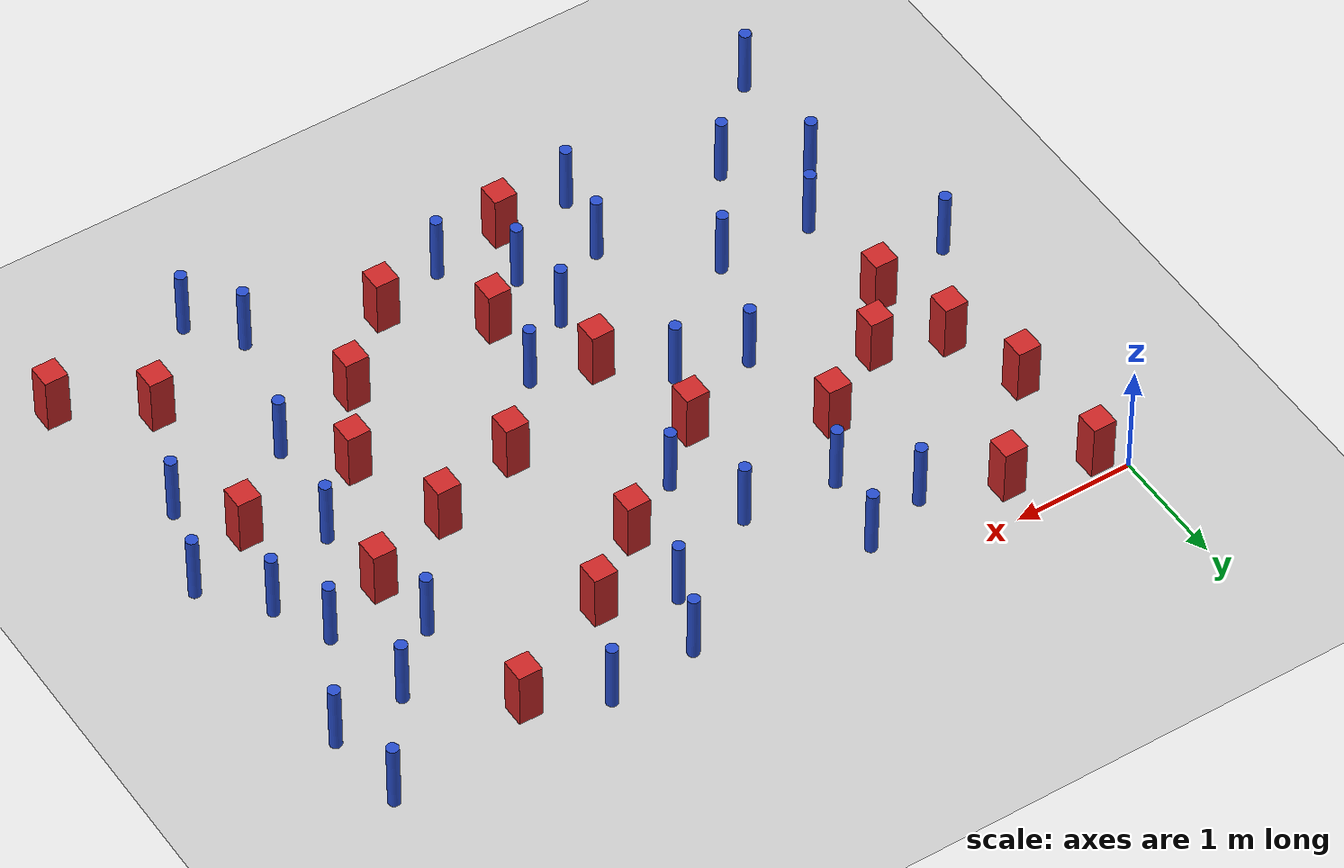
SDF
<sdf version="1.6">
 <world name="default">
  <model name="ground_plane">
   <static>1</static>
   <link name="link">
    <collision name="collision">
     <geometry><plane><normal>0 0 1</normal><size>100 100</size></plane></geometry>
     <surface><friction><ode><mu>100</mu><mu2>50</mu2></ode></friction></surface>
    </collision>
    <visual name="visual">
     <cast_shadows>0</cast_shadows>
     <geometry><plane><normal>0 0 1</normal><size>100 100</size></plane></geometry>
     <material>
      <ambient>1.0 1.0 1.0 1.0</ambient>
      <diffuse>0.8 0.8 0.8 1.0</diffuse>
      <specular>0.01 0.01 0.01 1.000000</specular>
     </material>
    </visual>
   </link>
  </model>
  <model name="pole_obstacle0">
   <static>true</static>
   <pose>1.79713980787 -2.40707328271 -9.47619616065e-06 5.49618799737e-07 2.36310414062e-07 -1.55090534798e-07</pose>
   <link name="link">
    <pose>0 0 0.3 0 -0 0</pose>
    <inertial>
     <mass>1</mass>
     <inertia><ixx>0.145833</ixx><ixy>0</ixy><ixz>0</ixz><iyy>0.145833</iyy><iyz>0</iyz><izz>0.125</izz></inertia>
    </inertial>
    <collision name="collision">
     <geometry><cylinder><radius>0.05</radius><length>.6</length></cylinder></geometry>
    </collision>
    <visual name="visual">
     <geometry><cylinder><radius>0.05</radius><length>.6</length></cylinder></geometry>
     <material>
      <script><name>Gazebo/Blue</name><uri>file://media/materials/scripts/gazebo.material</uri></script>
     </material>
    </visual>
   </link>
  </model>
  <model name="square_post_obstacle5">
   <static>true</static>
   <pose>0.197511593898 -0.157477024642 -6.11067671241e-07 -5.50515727128e-06 -8.79689657224e-07 2.37013304536e-05</pose>
   <link name="link">
    <pose>0 0 0.25 0 -0 0</pose>
    <inertial>
     <mass>100</mass>
     <inertia>
      <ixx>0.166667</ixx>
      <ixy>0</ixy>
      <ixz>0</ixz>
      <iyy>0.166667</iyy>
      <iyz>0</iyz>
      <izz>0.166667</izz>
     </inertia>
    </inertial>
    <collision name="collision"><geometry><box><size>.2 .2 .5</size></box></geometry></collision>
    <visual name="visual">
     <geometry><box><size>.2 .2 .5</size></box></geometry>
     <material>
      <script><name>Gazebo/Red</name><uri>file://media/materials/scripts/gazebo.material</uri></script>
     </material>
    </visual>
   </link>
  </model>
  <model name="pole_obstacle4">
   <static>true</static>
   <pose>6.36612746297 -0.911602490669 -9.47619616065e-06 5.49618799737e-07 2.36310414061e-07 -1.550905348e-07</pose>
   <link name="link">
    <pose>0 0 0.3 0 -0 0</pose>
    <inertial>
     <mass>1</mass>
     <inertia><ixx>0.145833</ixx><ixy>0</ixy><ixz>0</ixz><iyy>0.145833</iyy><iyz>0</iyz><izz>0.125</izz></inertia>
    </inertial>
    <collision name="collision">
     <geometry><cylinder><radius>0.05</radius><length>.6</length></cylinder></geometry>
    </collision>
    <visual name="visual">
     <geometry><cylinder><radius>0.05</radius><length>.6</length></cylinder></geometry>
     <material>
      <script><name>Gazebo/Blue</name><uri>file://media/materials/scripts/gazebo.material</uri></script>
     </material>
    </visual>
   </link>
  </model>
  <model name="square_post_obstacle9">
   <static>true</static>
   <pose>0.98204102087 -1.93543841282 -6.11067671241e-07 -5.50515727128e-06 -8.79689657224e-07 2.37013304536e-05</pose>
   <link name="link">
    <pose>0 0 0.25 0 -0 0</pose>
    <inertial>
     <mass>100</mass>
     <inertia>
      <ixx>0.166667</ixx>
      <ixy>0</ixy>
      <ixz>0</ixz>
      <iyy>0.166667</iyy>
      <iyz>0</iyz>
      <izz>0.166667</izz>
     </inertia>
    </inertial>
    <collision name="collision"><geometry><box><size>.2 .2 .5</size></box></geometry></collision>
    <visual name="visual">
     <geometry><box><size>.2 .2 .5</size></box></geometry>
     <material>
      <script><name>Gazebo/Red</name><uri>file://media/materials/scripts/gazebo.material</uri></script>
     </material>
    </visual>
   </link>
  </model>
  <model name="square_post_obstacle13">
   <static>true</static>
   <pose>4.09865665631 -0.925299943334 -6.11067671241e-07 -5.50515727128e-06 -8.79689657224e-07 2.37013304536e-05</pose>
   <link name="link">
    <pose>0 0 0.25 0 -0 0</pose>
    <inertial>
     <mass>100</mass>
     <inertia>
      <ixx>0.166667</ixx>
      <ixy>0</ixy>
      <ixz>0</ixz>
      <iyy>0.166667</iyy>
      <iyz>0</iyz>
      <izz>0.166667</izz>
     </inertia>
    </inertial>
    <collision name="collision"><geometry><box><size>.2 .2 .5</size></box></geometry></collision>
    <visual name="visual">
     <geometry><box><size>.2 .2 .5</size></box></geometry>
     <material>
      <script><name>Gazebo/Red</name><uri>file://media/materials/scripts/gazebo.material</uri></script>
     </material>
    </visual>
   </link>
  </model>
  <model name="square_post_obstacle17">
   <static>true</static>
   <pose>6.47951026331 -4.78304410986 -6.11067671241e-07 -5.50515727128e-06 -8.79689657224e-07 2.37013304536e-05</pose>
   <link name="link">
    <pose>0 0 0.25 0 -0 0</pose>
    <inertial>
     <mass>100</mass>
     <inertia>
      <ixx>0.166667</ixx>
      <ixy>0</ixy>
      <ixz>0</ixz>
      <iyy>0.166667</iyy>
      <iyz>0</iyz>
      <izz>0.166667</izz>
     </inertia>
    </inertial>
    <collision name="collision"><geometry><box><size>.2 .2 .5</size></box></geometry></collision>
    <visual name="visual">
     <geometry><box><size>.2 .2 .5</size></box></geometry>
     <material>
      <script><name>Gazebo/Red</name><uri>file://media/materials/scripts/gazebo.material</uri></script>
     </material>
    </visual>
   </link>
  </model>
  <model name="square_post_obstacle18">
   <static>true</static>
   <pose>0.617176443368 -2.41358064817 -6.11067671241e-07 -5.50515727128e-06 -8.79689657224e-07 2.37013304536e-05</pose>
   <link name="link">
    <pose>0 0 0.25 0 -0 0</pose>
    <inertial>
     <mass>100</mass>
     <inertia>
      <ixx>0.166667</ixx>
      <ixy>0</ixy>
      <ixz>0</ixz>
      <iyy>0.166667</iyy>
      <iyz>0</iyz>
      <izz>0.166667</izz>
     </inertia>
    </inertial>
    <collision name="collision"><geometry><box><size>.2 .2 .5</size></box></geometry></collision>
    <visual name="visual">
     <geometry><box><size>.2 .2 .5</size></box></geometry>
     <material>
      <script><name>Gazebo/Red</name><uri>file://media/materials/scripts/gazebo.material</uri></script>
     </material>
    </visual>
   </link>
  </model>
  <model name="pole_obstacle23">
   <static>true</static>
   <pose>1.43627492624 -3.33051828095 -9.47619616065e-06 5.49618799737e-07 2.36310414062e-07 -1.55090534798e-07</pose>
   <link name="link">
    <pose>0 0 0.3 0 -0 0</pose>
    <inertial>
     <mass>1</mass>
     <inertia><ixx>0.145833</ixx><ixy>0</ixy><ixz>0</ixz><iyy>0.145833</iyy><iyz>0</iyz><izz>0.125</izz></inertia>
    </inertial>
    <collision name="collision">
     <geometry><cylinder><radius>0.05</radius><length>.6</length></cylinder></geometry>
    </collision>
    <visual name="visual">
     <geometry><cylinder><radius>0.05</radius><length>.6</length></cylinder></geometry>
     <material>
      <script><name>Gazebo/Blue</name><uri>file://media/materials/scripts/gazebo.material</uri></script>
     </material>
    </visual>
   </link>
  </model>
  <model name="pole_obstacle36">
   <static>true</static>
   <pose>5.88306310807 -1.77314694247 -9.47619616065e-06 5.49618799738e-07 2.36310414071e-07 -1.55090534796e-07</pose>
   <link name="link">
    <pose>0 0 0.3 0 -0 0</pose>
    <inertial>
     <mass>1</mass>
     <inertia><ixx>0.145833</ixx><ixy>0</ixy><ixz>0</ixz><iyy>0.145833</iyy><iyz>0</iyz><izz>0.125</izz></inertia>
    </inertial>
    <collision name="collision">
     <geometry><cylinder><radius>0.05</radius><length>.6</length></cylinder></geometry>
    </collision>
    <visual name="visual">
     <geometry><cylinder><radius>0.05</radius><length>.6</length></cylinder></geometry>
     <material>
      <script><name>Gazebo/Blue</name><uri>file://media/materials/scripts/gazebo.material</uri></script>
     </material>
    </visual>
   </link>
  </model>
  <model name="square_post_obstacle45">
   <static>true</static>
   <pose>4.88205253295 -3.0809164761 -6.11067671241e-07 -5.50515727128e-06 -8.79689657224e-07 2.37013304536e-05</pose>
   <link name="link">
    <pose>0 0 0.25 0 -0 0</pose>
    <inertial>
     <mass>100</mass>
     <inertia>
      <ixx>0.166667</ixx>
      <ixy>0</ixy>
      <ixz>0</ixz>
      <iyy>0.166667</iyy>
      <iyz>0</iyz>
      <izz>0.166667</izz>
     </inertia>
    </inertial>
    <collision name="collision"><geometry><box><size>.2 .2 .5</size></box></geometry></collision>
    <visual name="visual">
     <geometry><box><size>.2 .2 .5</size></box></geometry>
     <material>
      <script><name>Gazebo/Red</name><uri>file://media/materials/scripts/gazebo.material</uri></script>
     </material>
    </visual>
   </link>
  </model>
  <model name="square_post_obstacle48">
   <static>true</static>
   <pose>5.33449981564 -1.98627649027 -6.11067671241e-07 -5.50515727128e-06 -8.79689657224e-07 2.37013304536e-05</pose>
   <link name="link">
    <pose>0 0 0.25 0 -0 0</pose>
    <inertial>
     <mass>100</mass>
     <inertia>
      <ixx>0.166667</ixx>
      <ixy>0</ixy>
      <ixz>0</ixz>
      <iyy>0.166667</iyy>
      <iyz>0</iyz>
      <izz>0.166667</izz>
     </inertia>
    </inertial>
    <collision name="collision"><geometry><box><size>.2 .2 .5</size></box></geometry></collision>
    <visual name="visual">
     <geometry><box><size>.2 .2 .5</size></box></geometry>
     <material>
      <script><name>Gazebo/Red</name><uri>file://media/materials/scripts/gazebo.material</uri></script>
     </material>
    </visual>
   </link>
  </model>
  <model name="pole_obstacle46">
   <static>true</static>
   <pose>4.47923872898 -0.157603476245 -9.47619616065e-06 5.49618799737e-07 2.36310414076e-07 -1.55090534792e-07</pose>
   <link name="link">
    <pose>0 0 0.3 0 -0 0</pose>
    <inertial>
     <mass>1</mass>
     <inertia><ixx>0.145833</ixx><ixy>0</ixy><ixz>0</ixz><iyy>0.145833</iyy><iyz>0</iyz><izz>0.125</izz></inertia>
    </inertial>
    <collision name="collision">
     <geometry><cylinder><radius>0.05</radius><length>.6</length></cylinder></geometry>
    </collision>
    <visual name="visual">
     <geometry><cylinder><radius>0.05</radius><length>.6</length></cylinder></geometry>
     <material>
      <script><name>Gazebo/Blue</name><uri>file://media/materials/scripts/gazebo.material</uri></script>
     </material>
    </visual>
   </link>
  </model>
  <model name="pole_obstacle50">
   <static>true</static>
   <pose>0.641150790295 -3.32454295059 -9.47619616065e-06 5.49618799737e-07 2.36310414066e-07 -1.55090534797e-07</pose>
   <link name="link">
    <pose>0 0 0.3 0 -0 0</pose>
    <inertial>
     <mass>1</mass>
     <inertia><ixx>0.145833</ixx><ixy>0</ixy><ixz>0</ixz><iyy>0.145833</iyy><iyz>0</iyz><izz>0.125</izz></inertia>
    </inertial>
    <collision name="collision">
     <geometry><cylinder><radius>0.05</radius><length>.6</length></cylinder></geometry>
    </collision>
    <visual name="visual">
     <geometry><cylinder><radius>0.05</radius><length>.6</length></cylinder></geometry>
     <material>
      <script><name>Gazebo/Blue</name><uri>file://media/materials/scripts/gazebo.material</uri></script>
     </material>
    </visual>
   </link>
  </model>
  <model name="pole_obstacle54">
   <static>true</static>
   <pose>3.29684404966 -3.12797003068 -9.47619616065e-06 5.49618799737e-07 2.36310414051e-07 -1.55090534807e-07</pose>
   <link name="link">
    <pose>0 0 0.3 0 -0 0</pose>
    <inertial>
     <mass>1</mass>
     <inertia><ixx>0.145833</ixx><ixy>0</ixy><ixz>0</ixz><iyy>0.145833</iyy><iyz>0</iyz><izz>0.125</izz></inertia>
    </inertial>
    <collision name="collision">
     <geometry><cylinder><radius>0.05</radius><length>.6</length></cylinder></geometry>
    </collision>
    <visual name="visual">
     <geometry><cylinder><radius>0.05</radius><length>.6</length></cylinder></geometry>
     <material>
      <script><name>Gazebo/Blue</name><uri>file://media/materials/scripts/gazebo.material</uri></script>
     </material>
    </visual>
   </link>
  </model>
  <model name="square_post_obstacle74">
   <static>true</static>
   <pose>4.6040077005 -2.26789190237 -6.11067671241e-07 -5.50515727128e-06 -8.79689657224e-07 2.37013304536e-05</pose>
   <link name="link">
    <pose>0 0 0.25 0 -0 0</pose>
    <inertial>
     <mass>100</mass>
     <inertia>
      <ixx>0.166667</ixx>
      <ixy>0</ixy>
      <ixz>0</ixz>
      <iyy>0.166667</iyy>
      <iyz>0</iyz>
      <izz>0.166667</izz>
     </inertia>
    </inertial>
    <collision name="collision"><geometry><box><size>.2 .2 .5</size></box></geometry></collision>
    <visual name="visual">
     <geometry><box><size>.2 .2 .5</size></box></geometry>
     <material>
      <script><name>Gazebo/Red</name><uri>file://media/materials/scripts/gazebo.material</uri></script>
     </material>
    </visual>
   </link>
  </model>
  <model name="pole_obstacle72">
   <static>true</static>
   <pose>6.48706411269 -2.69681543487 -9.47619616065e-06 5.49618799738e-07 2.36310414051e-07 -1.55090534805e-07</pose>
   <link name="link">
    <pose>0 0 0.3 0 -0 0</pose>
    <inertial>
     <mass>1</mass>
     <inertia><ixx>0.145833</ixx><ixy>0</ixy><ixz>0</ixz><iyy>0.145833</iyy><iyz>0</iyz><izz>0.125</izz></inertia>
    </inertial>
    <collision name="collision">
     <geometry><cylinder><radius>0.05</radius><length>.6</length></cylinder></geometry>
    </collision>
    <visual name="visual">
     <geometry><cylinder><radius>0.05</radius><length>.6</length></cylinder></geometry>
     <material>
      <script><name>Gazebo/Blue</name><uri>file://media/materials/scripts/gazebo.material</uri></script>
     </material>
    </visual>
   </link>
  </model>
  <model name="pole_obstacle77">
   <static>true</static>
   <pose>5.24574032715 -1.46074808996 -9.47619616065e-06 5.49618799738e-07 2.36310414071e-07 -1.55090534796e-07</pose>
   <link name="link">
    <pose>0 0 0.3 0 -0 0</pose>
    <inertial>
     <mass>1</mass>
     <inertia><ixx>0.145833</ixx><ixy>0</ixy><ixz>0</ixz><iyy>0.145833</iyy><iyz>0</iyz><izz>0.125</izz></inertia>
    </inertial>
    <collision name="collision">
     <geometry><cylinder><radius>0.05</radius><length>.6</length></cylinder></geometry>
    </collision>
    <visual name="visual">
     <geometry><cylinder><radius>0.05</radius><length>.6</length></cylinder></geometry>
     <material>
      <script><name>Gazebo/Blue</name><uri>file://media/materials/scripts/gazebo.material</uri></script>
     </material>
    </visual>
   </link>
  </model>
  <model name="square_post_obstacle77">
   <static>true</static>
   <pose>5.05801454032 -0.439441729416 -6.11067671241e-07 -5.50515727128e-06 -8.79689657224e-07 2.37013304536e-05</pose>
   <link name="link">
    <pose>0 0 0.25 0 -0 0</pose>
    <inertial>
     <mass>100</mass>
     <inertia>
      <ixx>0.166667</ixx>
      <ixy>0</ixy>
      <ixz>0</ixz>
      <iyy>0.166667</iyy>
      <iyz>0</iyz>
      <izz>0.166667</izz>
     </inertia>
    </inertial>
    <collision name="collision"><geometry><box><size>.2 .2 .5</size></box></geometry></collision>
    <visual name="visual">
     <geometry><box><size>.2 .2 .5</size></box></geometry>
     <material>
      <script><name>Gazebo/Red</name><uri>file://media/materials/scripts/gazebo.material</uri></script>
     </material>
    </visual>
   </link>
  </model>
  <model name="pole_obstacle80">
   <static>true</static>
   <pose>5.24190397127 -3.5339137137 -9.47619616065e-06 5.49618799738e-07 2.36310414051e-07 -1.55090534805e-07</pose>
   <link name="link">
    <pose>0 0 0.3 0 -0 0</pose>
    <inertial>
     <mass>1</mass>
     <inertia><ixx>0.145833</ixx><ixy>0</ixy><ixz>0</ixz><iyy>0.145833</iyy><iyz>0</iyz><izz>0.125</izz></inertia>
    </inertial>
    <collision name="collision">
     <geometry><cylinder><radius>0.05</radius><length>.6</length></cylinder></geometry>
    </collision>
    <visual name="visual">
     <geometry><cylinder><radius>0.05</radius><length>.6</length></cylinder></geometry>
     <material>
      <script><name>Gazebo/Blue</name><uri>file://media/materials/scripts/gazebo.material</uri></script>
     </material>
    </visual>
   </link>
  </model>
  <model name="pole_obstacle85">
   <static>true</static>
   <pose>2.70877573835 -1.10115838359 -9.47619616065e-06 5.49618799737e-07 2.36310414072e-07 -1.55090534793e-07</pose>
   <link name="link">
    <pose>0 0 0.3 0 -0 0</pose>
    <inertial>
     <mass>1</mass>
     <inertia><ixx>0.145833</ixx><ixy>0</ixy><ixz>0</ixz><iyy>0.145833</iyy><iyz>0</iyz><izz>0.125</izz></inertia>
    </inertial>
    <collision name="collision">
     <geometry><cylinder><radius>0.05</radius><length>.6</length></cylinder></geometry>
    </collision>
    <visual name="visual">
     <geometry><cylinder><radius>0.05</radius><length>.6</length></cylinder></geometry>
     <material>
      <script><name>Gazebo/Blue</name><uri>file://media/materials/scripts/gazebo.material</uri></script>
     </material>
    </visual>
   </link>
  </model>
  <model name="pole_obstacle88">
   <static>true</static>
   <pose>6.22171479248 -3.44707941952 -9.47619616065e-06 5.49618799738e-07 2.36310414051e-07 -1.55090534805e-07</pose>
   <link name="link">
    <pose>0 0 0.3 0 -0 0</pose>
    <inertial>
     <mass>1</mass>
     <inertia><ixx>0.145833</ixx><ixy>0</ixy><ixz>0</ixz><iyy>0.145833</iyy><iyz>0</iyz><izz>0.125</izz></inertia>
    </inertial>
    <collision name="collision">
     <geometry><cylinder><radius>0.05</radius><length>.6</length></cylinder></geometry>
    </collision>
    <visual name="visual">
     <geometry><cylinder><radius>0.05</radius><length>.6</length></cylinder></geometry>
     <material>
      <script><name>Gazebo/Blue</name><uri>file://media/materials/scripts/gazebo.material</uri></script>
     </material>
    </visual>
   </link>
  </model>
  <model name="pole_obstacle91">
   <static>true</static>
   <pose>2.15530482796 -3.97657933415 -9.47619616065e-06 5.49618799737e-07 2.36310414046e-07 -1.5509053481e-07</pose>
   <link name="link">
    <pose>0 0 0.3 0 -0 0</pose>
    <inertial>
     <mass>1</mass>
     <inertia><ixx>0.145833</ixx><ixy>0</ixy><ixz>0</ixz><iyy>0.145833</iyy><iyz>0</iyz><izz>0.125</izz></inertia>
    </inertial>
    <collision name="collision">
     <geometry><cylinder><radius>0.05</radius><length>.6</length></cylinder></geometry>
    </collision>
    <visual name="visual">
     <geometry><cylinder><radius>0.05</radius><length>.6</length></cylinder></geometry>
     <material>
      <script><name>Gazebo/Blue</name><uri>file://media/materials/scripts/gazebo.material</uri></script>
     </material>
    </visual>
   </link>
  </model>
  <model name="pole_obstacle96">
   <static>true</static>
   <pose>4.89634450425 -4.62459549455 -9.47619616065e-06 5.49618799737e-07 2.36310414037e-07 -1.55090534814e-07</pose>
   <link name="link">
    <pose>0 0 0.3 0 -0 0</pose>
    <inertial>
     <mass>1</mass>
     <inertia><ixx>0.145833</ixx><ixy>0</ixy><ixz>0</ixz><iyy>0.145833</iyy><iyz>0</iyz><izz>0.125</izz></inertia>
    </inertial>
    <collision name="collision">
     <geometry><cylinder><radius>0.05</radius><length>.6</length></cylinder></geometry>
    </collision>
    <visual name="visual">
     <geometry><cylinder><radius>0.05</radius><length>.6</length></cylinder></geometry>
     <material>
      <script><name>Gazebo/Blue</name><uri>file://media/materials/scripts/gazebo.material</uri></script>
     </material>
    </visual>
   </link>
  </model>
  <model name="pole_obstacle98">
   <static>true</static>
   <pose>0.898442365877 -4.15790424621 -9.47619616065e-06 5.49618799737e-07 2.36310414065e-07 -1.55090534796e-07</pose>
   <link name="link">
    <pose>0 0 0.3 0 -0 0</pose>
    <inertial>
     <mass>1</mass>
     <inertia><ixx>0.145833</ixx><ixy>0</ixy><ixz>0</ixz><iyy>0.145833</iyy><iyz>0</iyz><izz>0.125</izz></inertia>
    </inertial>
    <collision name="collision">
     <geometry><cylinder><radius>0.05</radius><length>.6</length></cylinder></geometry>
    </collision>
    <visual name="visual">
     <geometry><cylinder><radius>0.05</radius><length>.6</length></cylinder></geometry>
     <material>
      <script><name>Gazebo/Blue</name><uri>file://media/materials/scripts/gazebo.material</uri></script>
     </material>
    </visual>
   </link>
  </model>
  <model name="pole_obstacle99">
   <static>true</static>
   <pose>2.06062932571 -4.5558936154 -9.47619616065e-06 5.49618799738e-07 2.3631041406e-07 -1.55090534801e-07</pose>
   <link name="link">
    <pose>0 0 0.3 0 -0 0</pose>
    <inertial>
     <mass>1</mass>
     <inertia><ixx>0.145833</ixx><ixy>0</ixy><ixz>0</ixz><iyy>0.145833</iyy><iyz>0</iyz><izz>0.125</izz></inertia>
    </inertial>
    <collision name="collision">
     <geometry><cylinder><radius>0.05</radius><length>.6</length></cylinder></geometry>
    </collision>
    <visual name="visual">
     <geometry><cylinder><radius>0.05</radius><length>.6</length></cylinder></geometry>
     <material>
      <script><name>Gazebo/Blue</name><uri>file://media/materials/scripts/gazebo.material</uri></script>
     </material>
    </visual>
   </link>
  </model>
  <model name="pole_obstacle104">
   <static>true</static>
   <pose>1.51119523708 -0.555002443955 -9.47619616065e-06 5.49618799737e-07 2.36310414065e-07 -1.55090534798e-07</pose>
   <link name="link">
    <pose>0 0 0.3 0 -0 0</pose>
    <inertial>
     <mass>1</mass>
     <inertia><ixx>0.145833</ixx><ixy>0</ixy><ixz>0</ixz><iyy>0.145833</iyy><iyz>0</iyz><izz>0.125</izz></inertia>
    </inertial>
    <collision name="collision">
     <geometry><cylinder><radius>0.05</radius><length>.6</length></cylinder></geometry>
    </collision>
    <visual name="visual">
     <geometry><cylinder><radius>0.05</radius><length>.6</length></cylinder></geometry>
     <material>
      <script><name>Gazebo/Blue</name><uri>file://media/materials/scripts/gazebo.material</uri></script>
     </material>
    </visual>
   </link>
  </model>
  <model name="pole_obstacle106">
   <static>true</static>
   <pose>2.76606650168 -3.52347537513 -9.47619616065e-06 5.49618799737e-07 2.36310414051e-07 -1.55090534807e-07</pose>
   <link name="link">
    <pose>0 0 0.3 0 -0 0</pose>
    <inertial>
     <mass>1</mass>
     <inertia><ixx>0.145833</ixx><ixy>0</ixy><ixz>0</ixz><iyy>0.145833</iyy><iyz>0</iyz><izz>0.125</izz></inertia>
    </inertial>
    <collision name="collision">
     <geometry><cylinder><radius>0.05</radius><length>.6</length></cylinder></geometry>
    </collision>
    <visual name="visual">
     <geometry><cylinder><radius>0.05</radius><length>.6</length></cylinder></geometry>
     <material>
      <script><name>Gazebo/Blue</name><uri>file://media/materials/scripts/gazebo.material</uri></script>
     </material>
    </visual>
   </link>
  </model>
  <model name="square_post_obstacle94">
   <static>true</static>
   <pose>3.88974843109 -4.28744657972 -6.11067671241e-07 -5.50515727128e-06 -8.79689657224e-07 2.37013304536e-05</pose>
   <link name="link">
    <pose>0 0 0.25 0 -0 0</pose>
    <inertial>
     <mass>100</mass>
     <inertia>
      <ixx>0.166667</ixx>
      <ixy>0</ixy>
      <ixz>0</ixz>
      <iyy>0.166667</iyy>
      <iyz>0</iyz>
      <izz>0.166667</izz>
     </inertia>
    </inertial>
    <collision name="collision"><geometry><box><size>.2 .2 .5</size></box></geometry></collision>
    <visual name="visual">
     <geometry><box><size>.2 .2 .5</size></box></geometry>
     <material>
      <script><name>Gazebo/Red</name><uri>file://media/materials/scripts/gazebo.material</uri></script>
     </material>
    </visual>
   </link>
  </model>
  <model name="pole_obstacle116">
   <static>true</static>
   <pose>5.39169970492 -2.62491331652 -9.47619616065e-06 5.49618799738e-07 2.36310414051e-07 -1.55090534805e-07</pose>
   <link name="link">
    <pose>0 0 0.3 0 -0 0</pose>
    <inertial>
     <mass>1</mass>
     <inertia><ixx>0.145833</ixx><ixy>0</ixy><ixz>0</ixz><iyy>0.145833</iyy><iyz>0</iyz><izz>0.125</izz></inertia>
    </inertial>
    <collision name="collision">
     <geometry><cylinder><radius>0.05</radius><length>.6</length></cylinder></geometry>
    </collision>
    <visual name="visual">
     <geometry><cylinder><radius>0.05</radius><length>.6</length></cylinder></geometry>
     <material>
      <script><name>Gazebo/Blue</name><uri>file://media/materials/scripts/gazebo.material</uri></script>
     </material>
    </visual>
   </link>
  </model>
  <model name="square_post_obstacle103">
   <static>true</static>
   <pose>2.81457620785 -2.95507759897 -6.11067671241e-07 -5.50515727128e-06 -8.79689657224e-07 2.37013304536e-05</pose>
   <link name="link">
    <pose>0 0 0.25 0 -0 0</pose>
    <inertial>
     <mass>100</mass>
     <inertia>
      <ixx>0.166667</ixx>
      <ixy>0</ixy>
      <ixz>0</ixz>
      <iyy>0.166667</iyy>
      <iyz>0</iyz>
      <izz>0.166667</izz>
     </inertia>
    </inertial>
    <collision name="collision"><geometry><box><size>.2 .2 .5</size></box></geometry></collision>
    <visual name="visual">
     <geometry><box><size>.2 .2 .5</size></box></geometry>
     <material>
      <script><name>Gazebo/Red</name><uri>file://media/materials/scripts/gazebo.material</uri></script>
     </material>
    </visual>
   </link>
  </model>
  <model name="pole_obstacle125">
   <static>true</static>
   <pose>0.215349523909 -4.85945469957 -9.47619616065e-06 5.49618799737e-07 2.36310414069e-07 -1.55090534795e-07</pose>
   <link name="link">
    <pose>0 0 0.3 0 -0 0</pose>
    <inertial>
     <mass>1</mass>
     <inertia><ixx>0.145833</ixx><ixy>0</ixy><ixz>0</ixz><iyy>0.145833</iyy><iyz>0</iyz><izz>0.125</izz></inertia>
    </inertial>
    <collision name="collision">
     <geometry><cylinder><radius>0.05</radius><length>.6</length></cylinder></geometry>
    </collision>
    <visual name="visual">
     <geometry><cylinder><radius>0.05</radius><length>.6</length></cylinder></geometry>
     <material>
      <script><name>Gazebo/Blue</name><uri>file://media/materials/scripts/gazebo.material</uri></script>
     </material>
    </visual>
   </link>
  </model>
  <model name="square_post_obstacle122">
   <static>true</static>
   <pose>5.8319648845 -4.34421431524 -6.11067671241e-07 -5.50515727128e-06 -8.79689657224e-07 2.37013304536e-05</pose>
   <link name="link">
    <pose>0 0 0.25 0 -0 0</pose>
    <inertial>
     <mass>100</mass>
     <inertia>
      <ixx>0.166667</ixx>
      <ixy>0</ixy>
      <ixz>0</ixz>
      <iyy>0.166667</iyy>
      <iyz>0</iyz>
      <izz>0.166667</izz>
     </inertia>
    </inertial>
    <collision name="collision"><geometry><box><size>.2 .2 .5</size></box></geometry></collision>
    <visual name="visual">
     <geometry><box><size>.2 .2 .5</size></box></geometry>
     <material>
      <script><name>Gazebo/Red</name><uri>file://media/materials/scripts/gazebo.material</uri></script>
     </material>
    </visual>
   </link>
  </model>
  <model name="pole_obstacle140">
   <static>true</static>
   <pose>5.73751817475 -1.0118169395 -9.47619616065e-06 5.49618799737e-07 2.36310414067e-07 -1.55090534797e-07</pose>
   <link name="link">
    <pose>0 0 0.3 0 -0 0</pose>
    <inertial>
     <mass>1</mass>
     <inertia><ixx>0.145833</ixx><ixy>0</ixy><ixz>0</ixz><iyy>0.145833</iyy><iyz>0</iyz><izz>0.125</izz></inertia>
    </inertial>
    <collision name="collision">
     <geometry><cylinder><radius>0.05</radius><length>.6</length></cylinder></geometry>
    </collision>
    <visual name="visual">
     <geometry><cylinder><radius>0.05</radius><length>.6</length></cylinder></geometry>
     <material>
      <script><name>Gazebo/Blue</name><uri>file://media/materials/scripts/gazebo.material</uri></script>
     </material>
    </visual>
   </link>
  </model>
  <model name="pole_obstacle142">
   <static>true</static>
   <pose>1.93397819432 -1.0368788472 -9.47619616065e-06 5.49618799738e-07 2.36310414064e-07 -1.55090534797e-07</pose>
   <link name="link">
    <pose>0 0 0.3 0 -0 0</pose>
    <inertial>
     <mass>1</mass>
     <inertia><ixx>0.145833</ixx><ixy>0</ixy><ixz>0</ixz><iyy>0.145833</iyy><iyz>0</iyz><izz>0.125</izz></inertia>
    </inertial>
    <collision name="collision">
     <geometry><cylinder><radius>0.05</radius><length>.6</length></cylinder></geometry>
    </collision>
    <visual name="visual">
     <geometry><cylinder><radius>0.05</radius><length>.6</length></cylinder></geometry>
     <material>
      <script><name>Gazebo/Blue</name><uri>file://media/materials/scripts/gazebo.material</uri></script>
     </material>
    </visual>
   </link>
  </model>
  <model name="square_post_obstacle132">
   <static>true</static>
   <pose>4.50292379999 -3.72191377514 -6.11067671241e-07 -5.50515727128e-06 -8.79689657224e-07 2.37013304536e-05</pose>
   <link name="link">
    <pose>0 0 0.25 0 -0 0</pose>
    <inertial>
     <mass>100</mass>
     <inertia>
      <ixx>0.166667</ixx>
      <ixy>0</ixy>
      <ixz>0</ixz>
      <iyy>0.166667</iyy>
      <iyz>0</iyz>
      <izz>0.166667</izz>
     </inertia>
    </inertial>
    <collision name="collision"><geometry><box><size>.2 .2 .5</size></box></geometry></collision>
    <visual name="visual">
     <geometry><box><size>.2 .2 .5</size></box></geometry>
     <material>
      <script><name>Gazebo/Red</name><uri>file://media/materials/scripts/gazebo.material</uri></script>
     </material>
    </visual>
   </link>
  </model>
  <model name="square_post_obstacle135">
   <static>true</static>
   <pose>2.66982766037 -4.54702124688 -6.11067671241e-07 -5.50515727128e-06 -8.79689657224e-07 2.37013304536e-05</pose>
   <link name="link">
    <pose>0 0 0.25 0 -0 0</pose>
    <inertial>
     <mass>100</mass>
     <inertia>
      <ixx>0.166667</ixx>
      <ixy>0</ixy>
      <ixz>0</ixz>
      <iyy>0.166667</iyy>
      <iyz>0</iyz>
      <izz>0.166667</izz>
     </inertia>
    </inertial>
    <collision name="collision"><geometry><box><size>.2 .2 .5</size></box></geometry></collision>
    <visual name="visual">
     <geometry><box><size>.2 .2 .5</size></box></geometry>
     <material>
      <script><name>Gazebo/Red</name><uri>file://media/materials/scripts/gazebo.material</uri></script>
     </material>
    </visual>
   </link>
  </model>
  <model name="square_post_obstacle136">
   <static>true</static>
   <pose>3.85469856775 -2.51298568318 -6.11067671241e-07 -5.50515727128e-06 -8.79689657224e-07 2.37013304536e-05</pose>
   <link name="link">
    <pose>0 0 0.25 0 -0 0</pose>
    <inertial>
     <mass>100</mass>
     <inertia>
      <ixx>0.166667</ixx>
      <ixy>0</ixy>
      <ixz>0</ixz>
      <iyy>0.166667</iyy>
      <iyz>0</iyz>
      <izz>0.166667</izz>
     </inertia>
    </inertial>
    <collision name="collision"><geometry><box><size>.2 .2 .5</size></box></geometry></collision>
    <visual name="visual">
     <geometry><box><size>.2 .2 .5</size></box></geometry>
     <material>
      <script><name>Gazebo/Red</name><uri>file://media/materials/scripts/gazebo.material</uri></script>
     </material>
    </visual>
   </link>
  </model>
  <model name="pole_obstacle147">
   <static>true</static>
   <pose>-0.0945649054652 -2.57667070736 -9.47619616065e-06 5.49618799737e-07 2.36310414067e-07 -1.55090534797e-07</pose>
   <link name="link">
    <pose>0 0 0.3 0 -0 0</pose>
    <inertial>
     <mass>1</mass>
     <inertia><ixx>0.145833</ixx><ixy>0</ixy><ixz>0</ixz><iyy>0.145833</iyy><iyz>0</iyz><izz>0.125</izz></inertia>
    </inertial>
    <collision name="collision">
     <geometry><cylinder><radius>0.05</radius><length>.6</length></cylinder></geometry>
    </collision>
    <visual name="visual">
     <geometry><cylinder><radius>0.05</radius><length>.6</length></cylinder></geometry>
     <material>
      <script><name>Gazebo/Blue</name><uri>file://media/materials/scripts/gazebo.material</uri></script>
     </material>
    </visual>
   </link>
  </model>
  <model name="pole_obstacle150">
   <static>true</static>
   <pose>2.36044016011 -2.56759113357 -9.47619616065e-06 5.49618799737e-07 2.36310414051e-07 -1.55090534807e-07</pose>
   <link name="link">
    <pose>0 0 0.3 0 -0 0</pose>
    <inertial>
     <mass>1</mass>
     <inertia><ixx>0.145833</ixx><ixy>0</ixy><ixz>0</ixz><iyy>0.145833</iyy><iyz>0</iyz><izz>0.125</izz></inertia>
    </inertial>
    <collision name="collision">
     <geometry><cylinder><radius>0.05</radius><length>.6</length></cylinder></geometry>
    </collision>
    <visual name="visual">
     <geometry><cylinder><radius>0.05</radius><length>.6</length></cylinder></geometry>
     <material>
      <script><name>Gazebo/Blue</name><uri>file://media/materials/scripts/gazebo.material</uri></script>
     </material>
    </visual>
   </link>
  </model>
  <model name="pole_obstacle153">
   <static>true</static>
   <pose>3.28778344729 -4.46049307043 -9.47619616065e-06 5.49618799738e-07 2.3631041406e-07 -1.55090534801e-07</pose>
   <link name="link">
    <pose>0 0 0.3 0 -0 0</pose>
    <inertial>
     <mass>1</mass>
     <inertia><ixx>0.145833</ixx><ixy>0</ixy><ixz>0</ixz><iyy>0.145833</iyy><iyz>0</iyz><izz>0.125</izz></inertia>
    </inertial>
    <collision name="collision">
     <geometry><cylinder><radius>0.05</radius><length>.6</length></cylinder></geometry>
    </collision>
    <visual name="visual">
     <geometry><cylinder><radius>0.05</radius><length>.6</length></cylinder></geometry>
     <material>
      <script><name>Gazebo/Blue</name><uri>file://media/materials/scripts/gazebo.material</uri></script>
     </material>
    </visual>
   </link>
  </model>
  <model name="pole_obstacle155">
   <static>true</static>
   <pose>6.2974240131 -0.222873281521 -9.47619616065e-06 5.49618799737e-07 2.36310414066e-07 -1.55090534799e-07</pose>
   <link name="link">
    <pose>0 0 0.3 0 -0 0</pose>
    <inertial>
     <mass>1</mass>
     <inertia><ixx>0.145833</ixx><ixy>0</ixy><ixz>0</ixz><iyy>0.145833</iyy><iyz>0</iyz><izz>0.125</izz></inertia>
    </inertial>
    <collision name="collision">
     <geometry><cylinder><radius>0.05</radius><length>.6</length></cylinder></geometry>
    </collision>
    <visual name="visual">
     <geometry><cylinder><radius>0.05</radius><length>.6</length></cylinder></geometry>
     <material>
      <script><name>Gazebo/Blue</name><uri>file://media/materials/scripts/gazebo.material</uri></script>
     </material>
    </visual>
   </link>
  </model>
  <model name="pole_obstacle156">
   <static>true</static>
   <pose>2.06837377127 -0.369327251772 -9.47619616065e-06 5.49618799738e-07 2.36310414074e-07 -1.55090534794e-07</pose>
   <link name="link">
    <pose>0 0 0.3 0 -0 0</pose>
    <inertial>
     <mass>1</mass>
     <inertia><ixx>0.145833</ixx><ixy>0</ixy><ixz>0</ixz><iyy>0.145833</iyy><iyz>0</iyz><izz>0.125</izz></inertia>
    </inertial>
    <collision name="collision">
     <geometry><cylinder><radius>0.05</radius><length>.6</length></cylinder></geometry>
    </collision>
    <visual name="visual">
     <geometry><cylinder><radius>0.05</radius><length>.6</length></cylinder></geometry>
     <material>
      <script><name>Gazebo/Blue</name><uri>file://media/materials/scripts/gazebo.material</uri></script>
     </material>
    </visual>
   </link>
  </model>
  <model name="square_post_obstacle156">
   <static>true</static>
   <pose>0.891820733294 -0.30798291495 -6.11067671241e-07 -5.50515727128e-06 -8.79689657224e-07 2.37013304536e-05</pose>
   <link name="link">
    <pose>0 0 0.25 0 -0 0</pose>
    <inertial>
     <mass>100</mass>
     <inertia>
      <ixx>0.166667</ixx>
      <ixy>0</ixy>
      <ixz>0</ixz>
      <iyy>0.166667</iyy>
      <iyz>0</iyz>
      <izz>0.166667</izz>
     </inertia>
    </inertial>
    <collision name="collision"><geometry><box><size>.2 .2 .5</size></box></geometry></collision>
    <visual name="visual">
     <geometry><box><size>.2 .2 .5</size></box></geometry>
     <material>
      <script><name>Gazebo/Red</name><uri>file://media/materials/scripts/gazebo.material</uri></script>
     </material>
    </visual>
   </link>
  </model>
  <model name="square_post_obstacle162">
   <static>true</static>
   <pose>3.51949906086 -1.37626428516 -6.11067671241e-07 -5.50515727128e-06 -8.79689657224e-07 2.37013304536e-05</pose>
   <link name="link">
    <pose>0 0 0.25 0 -0 0</pose>
    <inertial>
     <mass>100</mass>
     <inertia>
      <ixx>0.166667</ixx>
      <ixy>0</ixy>
      <ixz>0</ixz>
      <iyy>0.166667</iyy>
      <iyz>0</iyz>
      <izz>0.166667</izz>
     </inertia>
    </inertial>
    <collision name="collision"><geometry><box><size>.2 .2 .5</size></box></geometry></collision>
    <visual name="visual">
     <geometry><box><size>.2 .2 .5</size></box></geometry>
     <material>
      <script><name>Gazebo/Red</name><uri>file://media/materials/scripts/gazebo.material</uri></script>
     </material>
    </visual>
   </link>
  </model>
  <model name="pole_obstacle176">
   <static>true</static>
   <pose>2.81729441657 -4.06564523131 -9.47619616065e-06 5.49618799738e-07 2.3631041406e-07 -1.55090534801e-07</pose>
   <link name="link">
    <pose>0 0 0.3 0 -0 0</pose>
    <inertial>
     <mass>1</mass>
     <inertia><ixx>0.145833</ixx><ixy>0</ixy><ixz>0</ixz><iyy>0.145833</iyy><iyz>0</iyz><izz>0.125</izz></inertia>
    </inertial>
    <collision name="collision">
     <geometry><cylinder><radius>0.05</radius><length>.6</length></cylinder></geometry>
    </collision>
    <visual name="visual">
     <geometry><cylinder><radius>0.05</radius><length>.6</length></cylinder></geometry>
     <material>
      <script><name>Gazebo/Blue</name><uri>file://media/materials/scripts/gazebo.material</uri></script>
     </material>
    </visual>
   </link>
  </model>
  <model name="square_post_obstacle183">
   <static>true</static>
   <pose>0.432349443631 -1.75303218025 -6.11067671241e-07 -5.50515727128e-06 -8.79689657224e-07 2.37013304536e-05</pose>
   <link name="link">
    <pose>0 0 0.25 0 -0 0</pose>
    <inertial>
     <mass>100</mass>
     <inertia>
      <ixx>0.166667</ixx>
      <ixy>0</ixy>
      <ixz>0</ixz>
      <iyy>0.166667</iyy>
      <iyz>0</iyz>
      <izz>0.166667</izz>
     </inertia>
    </inertial>
    <collision name="collision"><geometry><box><size>.2 .2 .5</size></box></geometry></collision>
    <visual name="visual">
     <geometry><box><size>.2 .2 .5</size></box></geometry>
     <material>
      <script><name>Gazebo/Red</name><uri>file://media/materials/scripts/gazebo.material</uri></script>
     </material>
    </visual>
   </link>
  </model>
  <model name="square_post_obstacle185">
   <static>true</static>
   <pose>0.223169473697 -1.08904528593 -6.11067671241e-07 -5.50515727128e-06 -8.79689657224e-07 2.37013304536e-05</pose>
   <link name="link">
    <pose>0 0 0.25 0 -0 0</pose>
    <inertial>
     <mass>100</mass>
     <inertia>
      <ixx>0.166667</ixx>
      <ixy>0</ixy>
      <ixz>0</ixz>
      <iyy>0.166667</iyy>
      <iyz>0</iyz>
      <izz>0.166667</izz>
     </inertia>
    </inertial>
    <collision name="collision"><geometry><box><size>.2 .2 .5</size></box></geometry></collision>
    <visual name="visual">
     <geometry><box><size>.2 .2 .5</size></box></geometry>
     <material>
      <script><name>Gazebo/Red</name><uri>file://media/materials/scripts/gazebo.material</uri></script>
     </material>
    </visual>
   </link>
  </model>
  <model name="pole_obstacle192">
   <static>true</static>
   <pose>3.72669885658 -0.231743201817 -9.4761961606e-06 5.49618799729e-07 2.36310414002e-07 -1.55090534824e-07</pose>
   <link name="link">
    <pose>0 0 0.3 0 -0 0</pose>
    <inertial>
     <mass>1</mass>
     <inertia><ixx>0.145833</ixx><ixy>0</ixy><ixz>0</ixz><iyy>0.145833</iyy><iyz>0</iyz><izz>0.125</izz></inertia>
    </inertial>
    <collision name="collision">
     <geometry><cylinder><radius>0.05</radius><length>.6</length></cylinder></geometry>
    </collision>
    <visual name="visual">
     <geometry><cylinder><radius>0.05</radius><length>.6</length></cylinder></geometry>
     <material>
      <script><name>Gazebo/Blue</name><uri>file://media/materials/scripts/gazebo.material</uri></script>
     </material>
    </visual>
   </link>
  </model>
  <model name="pole_obstacle199">
   <static>true</static>
   <pose>0.317848802867 -3.79206041691 -9.47619616065e-06 5.49618799738e-07 2.36310414065e-07 -1.55090534798e-07</pose>
   <link name="link">
    <pose>0 0 0.3 0 -0 0</pose>
    <inertial>
     <mass>1</mass>
     <inertia><ixx>0.145833</ixx><ixy>0</ixy><ixz>0</ixz><iyy>0.145833</iyy><iyz>0</iyz><izz>0.125</izz></inertia>
    </inertial>
    <collision name="collision">
     <geometry><cylinder><radius>0.05</radius><length>.6</length></cylinder></geometry>
    </collision>
    <visual name="visual">
     <geometry><cylinder><radius>0.05</radius><length>.6</length></cylinder></geometry>
     <material>
      <script><name>Gazebo/Blue</name><uri>file://media/materials/scripts/gazebo.material</uri></script>
     </material>
    </visual>
   </link>
  </model>
  <model name="pole_obstacle207">
   <static>true</static>
   <pose>3.53910238892 -0.719364338422 -9.47619616065e-06 5.49618799738e-07 2.36310414075e-07 -1.55090534793e-07</pose>
   <link name="link">
    <pose>0 0 0.3 0 -0 0</pose>
    <inertial>
     <mass>1</mass>
     <inertia><ixx>0.145833</ixx><ixy>0</ixy><ixz>0</ixz><iyy>0.145833</iyy><iyz>0</iyz><izz>0.125</izz></inertia>
    </inertial>
    <collision name="collision">
     <geometry><cylinder><radius>0.05</radius><length>.6</length></cylinder></geometry>
    </collision>
    <visual name="visual">
     <geometry><cylinder><radius>0.05</radius><length>.6</length></cylinder></geometry>
     <material>
      <script><name>Gazebo/Blue</name><uri>file://media/materials/scripts/gazebo.material</uri></script>
     </material>
    </visual>
   </link>
  </model>
  <model name="pole_obstacle208">
   <static>true</static>
   <pose>6.09488421413 -2.22979626023 -9.47619616065e-06 5.49618799738e-07 2.36310414051e-07 -1.55090534805e-07</pose>
   <link name="link">
    <pose>0 0 0.3 0 -0 0</pose>
    <inertial>
     <mass>1</mass>
     <inertia><ixx>0.145833</ixx><ixy>0</ixy><ixz>0</ixz><iyy>0.145833</iyy><iyz>0</iyz><izz>0.125</izz></inertia>
    </inertial>
    <collision name="collision">
     <geometry><cylinder><radius>0.05</radius><length>.6</length></cylinder></geometry>
    </collision>
    <visual name="visual">
     <geometry><cylinder><radius>0.05</radius><length>.6</length></cylinder></geometry>
     <material>
      <script><name>Gazebo/Blue</name><uri>file://media/materials/scripts/gazebo.material</uri></script>
     </material>
    </visual>
   </link>
  </model>
  <model name="pole_obstacle216">
   <static>true</static>
   <pose>5.2022655453 -5.02211434326 -9.47619616065e-06 5.49618799737e-07 2.36310414037e-07 -1.55090534814e-07</pose>
   <link name="link">
    <pose>0 0 0.3 0 -0 0</pose>
    <inertial>
     <mass>1</mass>
     <inertia><ixx>0.145833</ixx><ixy>0</ixy><ixz>0</ixz><iyy>0.145833</iyy><iyz>0</iyz><izz>0.125</izz></inertia>
    </inertial>
    <collision name="collision">
     <geometry><cylinder><radius>0.05</radius><length>.6</length></cylinder></geometry>
    </collision>
    <visual name="visual">
     <geometry><cylinder><radius>0.05</radius><length>.6</length></cylinder></geometry>
     <material>
      <script><name>Gazebo/Blue</name><uri>file://media/materials/scripts/gazebo.material</uri></script>
     </material>
    </visual>
   </link>
  </model>
  <model name="pole_obstacle223">
   <static>true</static>
   <pose>2.98205138468 -1.68409028303 -9.47619616065e-06 5.49618799737e-07 2.36310414072e-07 -1.55090534793e-07</pose>
   <link name="link">
    <pose>0 0 0.3 0 -0 0</pose>
    <inertial>
     <mass>1</mass>
     <inertia><ixx>0.145833</ixx><ixy>0</ixy><ixz>0</ixz><iyy>0.145833</iyy><iyz>0</iyz><izz>0.125</izz></inertia>
    </inertial>
    <collision name="collision">
     <geometry><cylinder><radius>0.05</radius><length>.6</length></cylinder></geometry>
    </collision>
    <visual name="visual">
     <geometry><cylinder><radius>0.05</radius><length>.6</length></cylinder></geometry>
     <material>
      <script><name>Gazebo/Blue</name><uri>file://media/materials/scripts/gazebo.material</uri></script>
     </material>
    </visual>
   </link>
  </model>
  <model name="square_post_obstacle202">
   <static>true</static>
   <pose>3.2411299502 -3.73051002312 -6.11067671241e-07 -5.50515727128e-06 -8.79689657224e-07 2.37013304536e-05</pose>
   <link name="link">
    <pose>0 0 0.25 0 -0 0</pose>
    <inertial>
     <mass>100</mass>
     <inertia>
      <ixx>0.166667</ixx>
      <ixy>0</ixy>
      <ixz>0</ixz>
      <iyy>0.166667</iyy>
      <iyz>0</iyz>
      <izz>0.166667</izz>
     </inertia>
    </inertial>
    <collision name="collision"><geometry><box><size>.2 .2 .5</size></box></geometry></collision>
    <visual name="visual">
     <geometry><box><size>.2 .2 .5</size></box></geometry>
     <material>
      <script><name>Gazebo/Red</name><uri>file://media/materials/scripts/gazebo.material</uri></script>
     </material>
    </visual>
   </link>
  </model>
  <model name="square_post_obstacle204">
   <static>true</static>
   <pose>1.6292299502 -1.53928002312 -6.11067671241e-07 -5.50515727128e-06 -8.79689657224e-07 2.37013304536e-05</pose>
   <link name="link">
    <pose>0 0 0.25 0 -0 0</pose>
    <inertial>
     <mass>100</mass>
     <inertia>
      <ixx>0.166667</ixx>
      <ixy>0</ixy>
      <ixz>0</ixz>
      <iyy>0.166667</iyy>
      <iyz>0</iyz>
      <izz>0.166667</izz>
     </inertia>
    </inertial>
    <collision name="collision"><geometry><box><size>.2 .2 .5</size></box></geometry></collision>
    <visual name="visual">
     <geometry><box><size>.2 .2 .5</size></box></geometry>
     <material>
      <script><name>Gazebo/Red</name><uri>file://media/materials/scripts/gazebo.material</uri></script>
     </material>
    </visual>
   </link>
  </model>
  <model name="square_post_obstacle220">
   <static>true</static>
   <pose>5.8962499502 -2.96611002312 -6.11067671241e-07 -5.50515727128e-06 -8.79689657224e-07 2.37013304536e-05</pose>
   <link name="link">
    <pose>0 0 0.25 0 -0 0</pose>
    <inertial>
     <mass>100</mass>
     <inertia>
      <ixx>0.166667</ixx>
      <ixy>0</ixy>
      <ixz>0</ixz>
      <iyy>0.166667</iyy>
      <iyz>0</iyz>
      <izz>0.166667</izz>
     </inertia>
    </inertial>
    <collision name="collision"><geometry><box><size>.2 .2 .5</size></box></geometry></collision>
    <visual name="visual">
     <geometry><box><size>.2 .2 .5</size></box></geometry>
     <material>
      <script><name>Gazebo/Red</name><uri>file://media/materials/scripts/gazebo.material</uri></script>
     </material>
    </visual>
   </link>
  </model>
  <model name="square_post_obstacle222">
   <static>true</static>
   <pose>2.5657899502 -2.04409002312 -6.11067671241e-07 -5.50515727128e-06 -8.79689657224e-07 2.37013304536e-05</pose>
   <link name="link">
    <pose>0 0 0.25 0 -0 0</pose>
    <inertial>
     <mass>100</mass>
     <inertia>
      <ixx>0.166667</ixx>
      <ixy>0</ixy>
      <ixz>0</ixz>
      <iyy>0.166667</iyy>
      <iyz>0</iyz>
      <izz>0.166667</izz>
     </inertia>
    </inertial>
    <collision name="collision"><geometry><box><size>.2 .2 .5</size></box></geometry></collision>
    <visual name="visual">
     <geometry><box><size>.2 .2 .5</size></box></geometry>
     <material>
      <script><name>Gazebo/Red</name><uri>file://media/materials/scripts/gazebo.material</uri></script>
     </material>
    </visual>
   </link>
  </model>
 </world>
</sdf>
